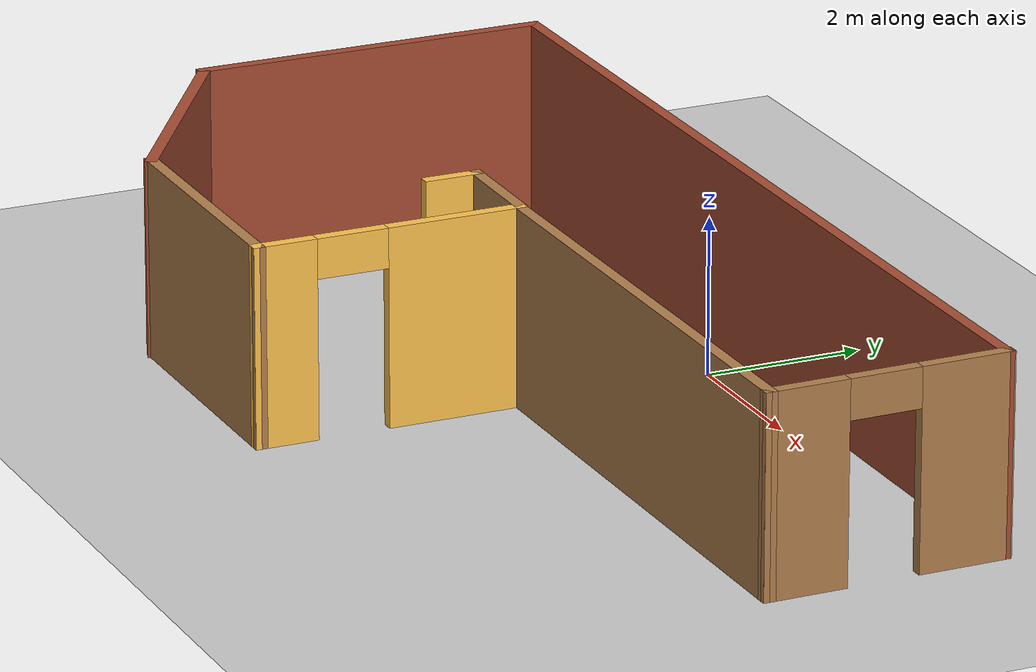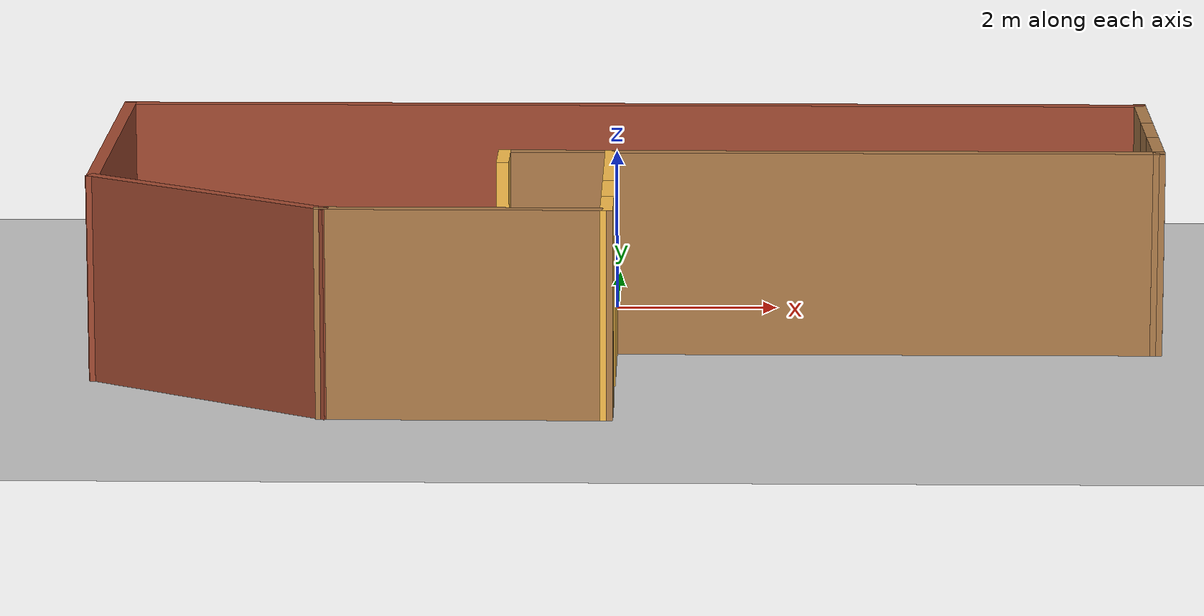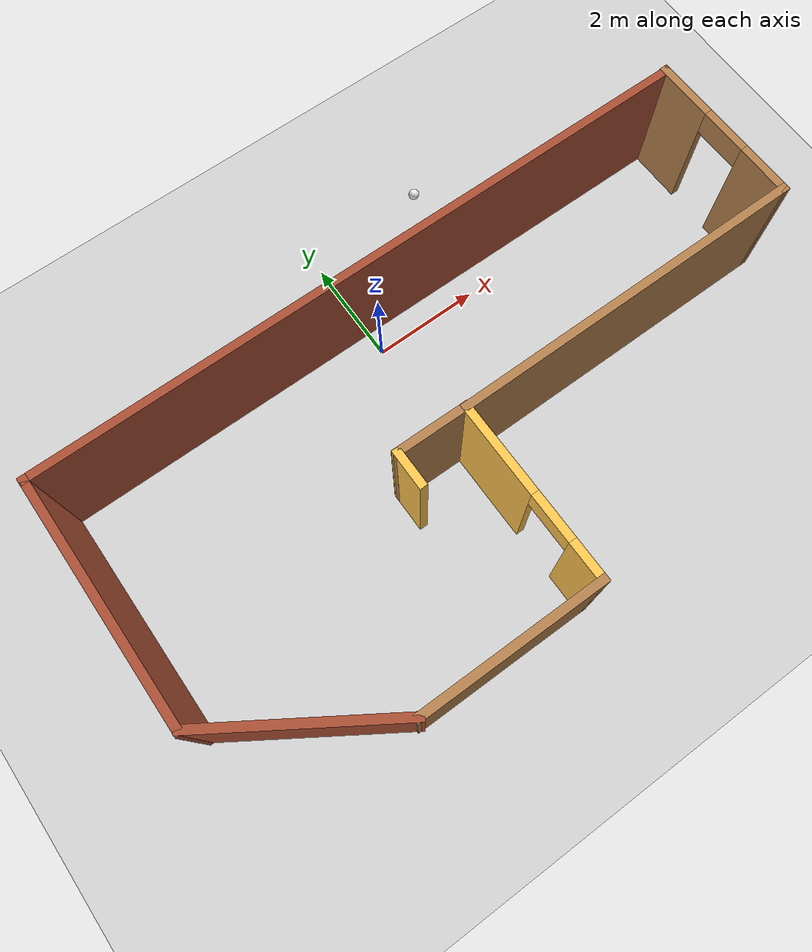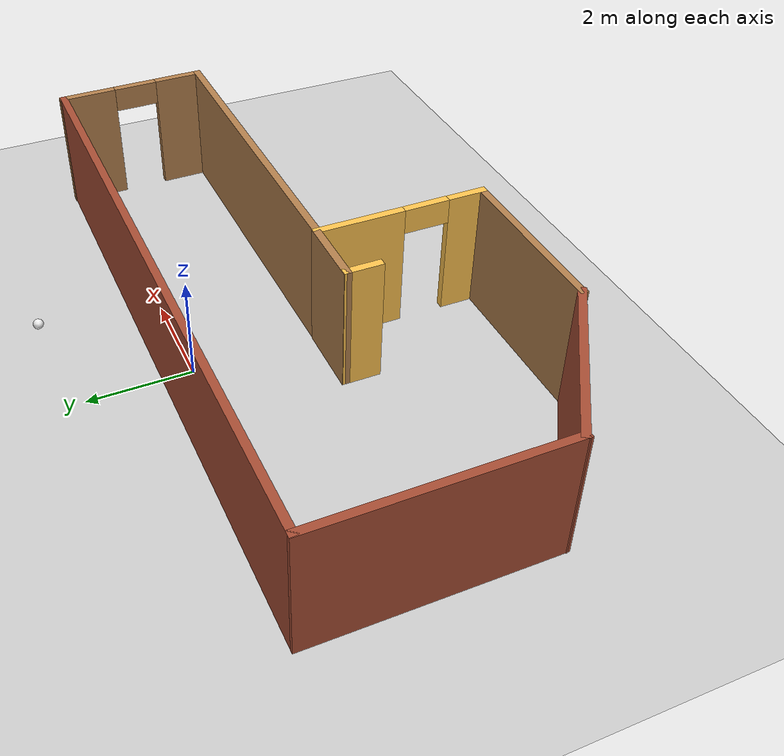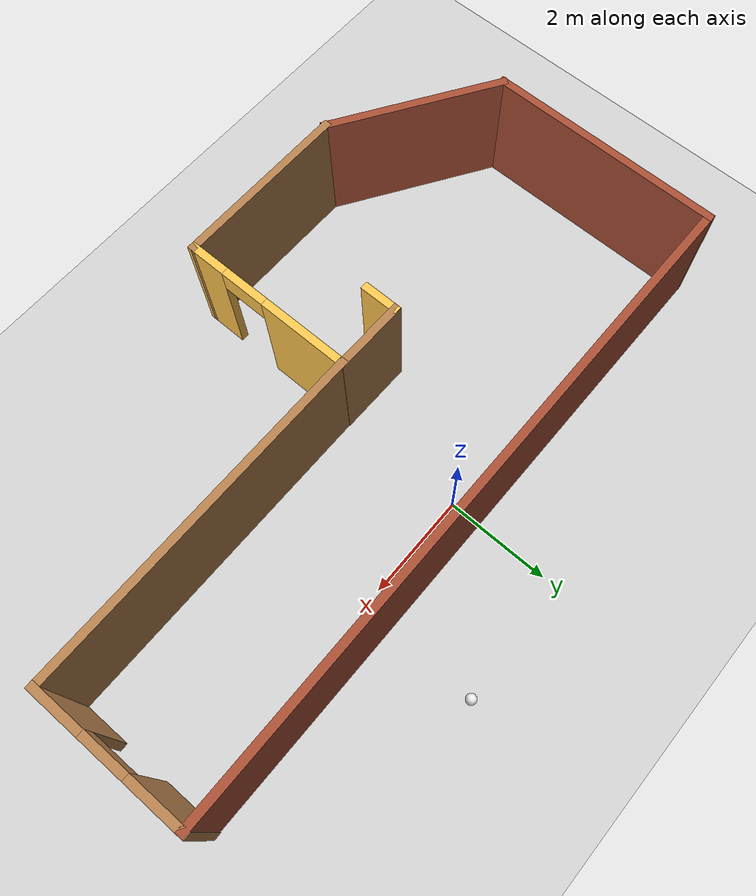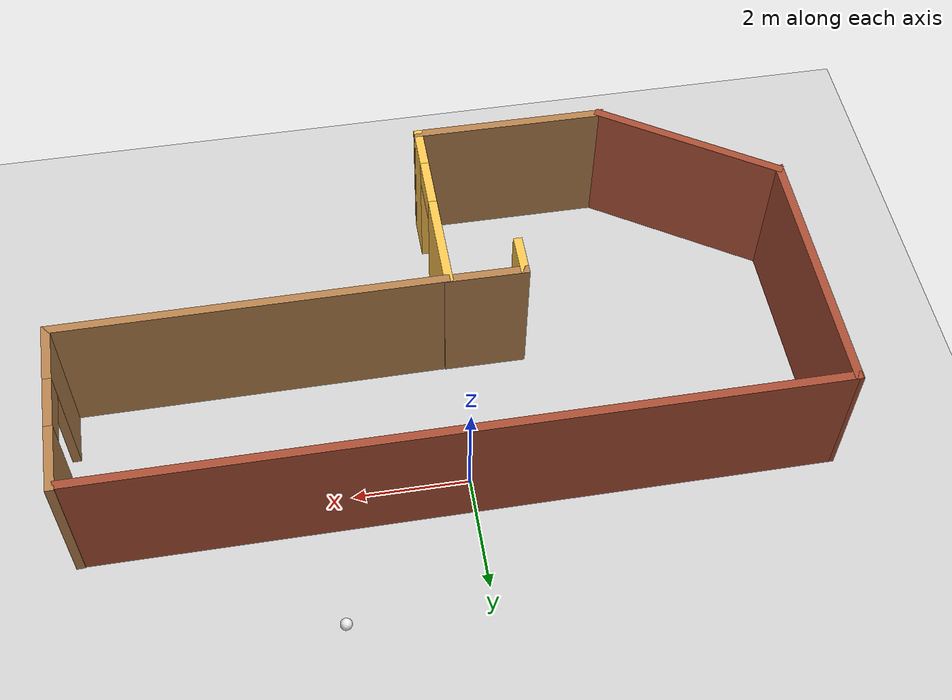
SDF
<sdf version="1.6">
 <world name="Huy.world">
  <plugin name="welcome" filename="libwelcome.so"/>
  <light name="sun" type="directional">
   <pose>0 0 10 0 -0 0</pose>
   <diffuse>0.8 0.8 0.8 1</diffuse>
   <specular>0.2 0.2 0.2 1</specular>
   <attenuation>
    <range>1000</range>
    <constant>0.9</constant>
    <linear>0.01</linear>
    <quadratic>0.001</quadratic>
   </attenuation>
   <direction>-0.5 0.1 -0.9</direction>
  </light>
  <model name="ground_plane">
   <static>1</static>
   <link name="link">
    <collision name="collision">
     <geometry><plane><normal>0 0 1</normal><size>100 100</size></plane></geometry>
     <surface><friction><ode><mu>100</mu><mu2>50</mu2></ode></friction></surface>
    </collision>
    <visual name="visual">
     <cast_shadows>0</cast_shadows>
     <geometry><plane><normal>0 0 1</normal><size>100 100</size></plane></geometry>
     <material>
      <script><uri>file://media/materials/scripts/gazebo.material</uri><name>Gazebo/Grey</name></script>
     </material>
    </visual>
   </link>
  </model>
  <gravity>0 0 -9.8</gravity>
  <magnetic_field>6e-06 2.3e-05 -4.2e-05</magnetic_field>
  <atmosphere type="adiabatic"/>
  <physics name="default_physics" default="0" type="ode">
   <max_step_size>0.001</max_step_size>
   <real_time_factor>1</real_time_factor>
   <real_time_update_rate>1000</real_time_update_rate>
  </physics>
  <scene><ambient>0.4 0.4 0.4 1</ambient><background>0.7 0.7 0.7 1</background><shadows>1</shadows></scene>
  <spherical_coordinates>
   <surface_model>EARTH_WGS84</surface_model>
   <latitude_deg>0</latitude_deg>
   <longitude_deg>0</longitude_deg>
   <elevation>0</elevation>
   <heading_deg>0</heading_deg>
  </spherical_coordinates>
  <model name="my_ball">
   <link name="link_0">
    <inertial>
     <mass>0.00781802</mass>
     <inertia>
      <ixx>3.08e-05</ixx>
      <ixy>0</ixy>
      <ixz>0</ixz>
      <iyy>3.08e-05</iyy>
      <iyz>0</iyz>
      <izz>3.08e-05</izz>
     </inertia>
    </inertial>
    <visual name="visual">
     <geometry><sphere><radius>0.1</radius></sphere></geometry>
     <material>
      <lighting>0</lighting>
      <script><uri>file://media/materials/scripts/gazebo.material</uri><name>Gazebo/White</name></script>
      <ambient>1 1 1 1</ambient>
      <diffuse>1 1 1 1</diffuse>
      <specular>1 1 1 1</specular>
      <emissive>1 1 1 1</emissive>
      <shader type="pixel"><normal_map>__default__</normal_map></shader>
     </material>
    </visual>
    <collision name="collision">
     <geometry><sphere><radius>0.099236</radius></sphere></geometry>
     <surface>
      <friction>
       <ode><mu>1</mu><mu2>1</mu2><fdir1>0 0 0</fdir1><slip1>0</slip1><slip2>0</slip2></ode>
       <torsional>
        <coefficient>1</coefficient>
        <patch_radius>0</patch_radius>
        <surface_radius>0</surface_radius>
        <use_patch_radius>1</use_patch_radius>
        <ode><slip>0</slip></ode>
       </torsional>
      </friction>
      <bounce><restitution_coefficient>0</restitution_coefficient><threshold>1e+06</threshold></bounce>
      <contact>
       <collide_without_contact>0</collide_without_contact>
       <collide_without_contact_bitmask>1</collide_without_contact_bitmask>
       <collide_bitmask>1</collide_bitmask>
       <ode>
        <soft_cfm>0</soft_cfm>
        <soft_erp>0.2</soft_erp>
        <kp>1e+13</kp>
        <kd>1</kd>
        <max_vel>0.01</max_vel>
        <min_depth>0</min_depth>
       </ode>
       <bullet>
        <split_impulse>1</split_impulse>
        <split_impulse_penetration_threshold>-0.01</split_impulse_penetration_threshold>
        <soft_cfm>0</soft_cfm>
        <soft_erp>0.2</soft_erp>
        <kp>1e+13</kp>
        <kd>1</kd>
       </bullet>
      </contact>
     </surface>
    </collision>
   </link>
   <static>0</static>
   <pose>2.38411 2.32627 0.099236 0 -0 0</pose>
  </model>
  <model name="Huy.world">
   <pose>0.210215 -2.63477 0 0 -0 0</pose>
   <link name="Wall_0">
    <collision name="Wall_0_Collision">
     <geometry><box><size>4.61172 0.15 2.5</size></box></geometry>
     <pose>0 0 1.25 0 -0 0</pose>
    </collision>
    <visual name="Wall_0_Visual">
     <pose>0 0 1.25 0 -0 0</pose>
     <geometry><box><size>4.61172 0.15 2.5</size></box></geometry>
     <material>
      <script><uri>file://media/materials/scripts/gazebo.material</uri><name>Gazebo/Bricks</name></script>
      <ambient>0.996078 0.47451 0.0196078 1</ambient>
     </material>
     <meta><layer>0</layer></meta>
    </visual>
    <pose>-6.35338 0.908429 0 0 -0 1.56865</pose>
   </link>
   <link name="Wall_1">
    <collision name="Wall_1_Collision">
     <geometry><box><size>12.8136 0.15 2.5</size></box></geometry>
     <pose>0 0 1.25 0 -0 0</pose>
    </collision>
    <visual name="Wall_1_Visual">
     <pose>0 0 1.25 0 -0 0</pose>
     <geometry><box><size>12.8136 0.15 2.5</size></box></geometry>
     <material>
      <script><uri>file://media/materials/scripts/gazebo.material</uri><name>Gazebo/Bricks</name></script>
      <ambient>0.996078 0.47451 0.0196078 1</ambient>
     </material>
     <meta><layer>0</layer></meta>
    </visual>
    <pose>-0.001571 3.14689 0 0 -0 0.001201</pose>
   </link>
   <link name="Wall_2">
    <pose>6.35045 1.68385 0 0 0 -1.5572</pose>
    <visual name="Wall_2_Visual_0">
     <pose>-0.973654 0 1.25 0 -0 0</pose>
     <geometry><box><size>1.17468 0.15 2.5</size></box></geometry>
     <material>
      <script><uri>file://media/materials/scripts/gazebo.material</uri><name>Gazebo/Wood</name></script>
      <ambient>1 1 1 1</ambient>
     </material>
     <meta><layer>0</layer></meta>
    </visual>
    <collision name="Wall_2_Collision_0">
     <geometry><box><size>1.17468 0.15 2.5</size></box></geometry>
     <pose>-0.973654 0 1.25 0 -0 0</pose>
    </collision>
    <visual name="Wall_2_Visual_1">
     <pose>1.03734 0 1.25 0 -0 0</pose>
     <geometry><box><size>1.04731 0.15 2.5</size></box></geometry>
     <material>
      <script><uri>file://media/materials/scripts/gazebo.material</uri><name>Gazebo/Wood</name></script>
      <ambient>1 1 1 1</ambient>
     </material>
     <meta><layer>0</layer></meta>
    </visual>
    <collision name="Wall_2_Collision_1">
     <geometry><box><size>1.04731 0.15 2.5</size></box></geometry>
     <pose>1.03734 0 1.25 0 -0 0</pose>
    </collision>
    <visual name="Wall_2_Visual_2">
     <pose>0.063685 0 2.25 0 -0 0</pose>
     <geometry><box><size>0.9 0.15 0.5</size></box></geometry>
     <material>
      <script><uri>file://media/materials/scripts/gazebo.material</uri><name>Gazebo/Wood</name></script>
      <ambient>1 1 1 1</ambient>
     </material>
     <meta><layer>0</layer></meta>
    </visual>
    <collision name="Wall_2_Collision_2">
     <geometry><box><size>0.9 0.15 0.5</size></box></geometry>
     <pose>0.063685 0 2.25 0 -0 0</pose>
    </collision>
   </link>
   <link name="Wall_3">
    <collision name="Wall_3_Collision">
     <geometry><box><size>6.76001 0.15 2.5</size></box></geometry>
     <pose>0 0 1.25 0 -0 0</pose>
    </collision>
    <visual name="Wall_3_Visual">
     <pose>0 0 1.25 0 -0 0</pose>
     <geometry><box><size>6.76001 0.15 2.5</size></box></geometry>
     <material>
      <script><uri>file://media/materials/scripts/gazebo.material</uri><name>Gazebo/Wood</name></script>
      <ambient>1 1 1 1</ambient>
     </material>
     <meta><layer>0</layer></meta>
    </visual>
    <pose>3.06566 0.187992 0 0 0 -3.13857</pose>
   </link>
   <link name="Wall_4">
    <pose>-0.234344 -1.48701 0 0 0 -1.56779</pose>
    <visual name="Wall_4_Visual_0">
     <pose>-0.84898 0 1.25 0 -0 0</pose>
     <geometry><box><size>1.78205 0.15 2.5</size></box></geometry>
     <material>
      <script><uri>file://media/materials/scripts/gazebo.material</uri><name>Gazebo/Grey</name></script>
      <ambient>1 0.764706 0.305882 1</ambient>
     </material>
     <meta><layer>0</layer></meta>
    </visual>
    <collision name="Wall_4_Collision_0">
     <geometry><box><size>1.78205 0.15 2.5</size></box></geometry>
     <pose>-0.84898 0 1.25 0 -0 0</pose>
    </collision>
    <visual name="Wall_4_Visual_1">
     <pose>1.34103 0 1.25 0 -0 0</pose>
     <geometry><box><size>0.79796 0.15 2.5</size></box></geometry>
     <material>
      <script><uri>file://media/materials/scripts/gazebo.material</uri><name>Gazebo/Grey</name></script>
      <ambient>1 0.764706 0.305882 1</ambient>
     </material>
     <meta><layer>0</layer></meta>
    </visual>
    <collision name="Wall_4_Collision_1">
     <geometry><box><size>0.79796 0.15 2.5</size></box></geometry>
     <pose>1.34103 0 1.25 0 -0 0</pose>
    </collision>
    <visual name="Wall_4_Visual_2">
     <pose>0.492047 0 2.25 0 -0 0</pose>
     <geometry><box><size>0.9 0.15 0.5</size></box></geometry>
     <material>
      <script><uri>file://media/materials/scripts/gazebo.material</uri><name>Gazebo/Grey</name></script>
      <ambient>1 0.764706 0.305882 1</ambient>
     </material>
     <meta><layer>0</layer></meta>
    </visual>
    <collision name="Wall_4_Collision_2">
     <geometry><box><size>0.9 0.15 0.5</size></box></geometry>
     <pose>0.492047 0 2.25 0 -0 0</pose>
    </collision>
   </link>
   <link name="Wall_5">
    <collision name="Wall_5_Collision">
     <geometry><box><size>3.46001 0.15 2.5</size></box></geometry>
     <pose>0 0 1.25 0 -0 0</pose>
    </collision>
    <visual name="Wall_5_Visual">
     <pose>0 0 1.25 0 -0 0</pose>
     <geometry><box><size>3.46001 0.15 2.5</size></box></geometry>
     <material>
      <script><uri>file://media/materials/scripts/gazebo.material</uri><name>Gazebo/Wood</name></script>
      <ambient>1 1 1 1</ambient>
     </material>
     <meta><layer>0</layer></meta>
    </visual>
    <pose>-1.88434 -3.14701 0 0 -0 3.13857</pose>
   </link>
   <link name="Wall_6">
    <collision name="Wall_6_Collision">
     <geometry><box><size>3.50072 0.15 2.5</size></box></geometry>
     <pose>0 0 1.25 0 -0 0</pose>
    </collision>
    <visual name="Wall_6_Visual">
     <pose>0 0 1.25 0 -0 0</pose>
     <geometry><box><size>3.50072 0.15 2.5</size></box></geometry>
     <material>
      <script><uri>file://media/materials/scripts/gazebo.material</uri><name>Gazebo/Bricks</name></script>
      <ambient>0.996078 0.47451 0.0196078 1</ambient>
     </material>
     <meta><layer>0</layer></meta>
    </visual>
    <pose>-4.93615 -2.23222 0 0 -0 2.56754</pose>
   </link>
   <link name="Wall_8">
    <collision name="Wall_8_Collision">
     <geometry><box><size>0.75 0.15 2.5</size></box></geometry>
     <pose>0 0 1.25 0 -0 0</pose>
    </collision>
    <visual name="Wall_8_Visual">
     <pose>0 0 1.25 0 -0 0</pose>
     <geometry><box><size>0.75 0.15 2.5</size></box></geometry>
     <material>
      <script><uri>file://media/materials/scripts/gazebo.material</uri><name>Gazebo/Grey</name></script>
      <ambient>1 0.764706 0.305882 1</ambient>
     </material>
     <meta><layer>0</layer></meta>
    </visual>
    <pose>-1.52934 -0.112009 0 0 -0 1.5708</pose>
   </link>
   <link name="Wall_9">
    <collision name="Wall_9_Collision">
     <geometry><box><size>1.44035 0.15 2.5</size></box></geometry>
     <pose>0 0 1.25 0 -0 0</pose>
    </collision>
    <visual name="Wall_9_Visual">
     <pose>0 0 1.25 0 -0 0</pose>
     <geometry><box><size>1.44035 0.15 2.5</size></box></geometry>
     <material>
      <script><uri>file://media/materials/scripts/gazebo.material</uri><name>Gazebo/Wood</name></script>
      <ambient>1 1 1 1</ambient>
     </material>
     <meta><layer>0</layer></meta>
    </visual>
    <pose>-0.884344 0.192992 0 0 0 -0.007752</pose>
   </link>
   <static>1</static>
  </model>
 </world>
</sdf>
